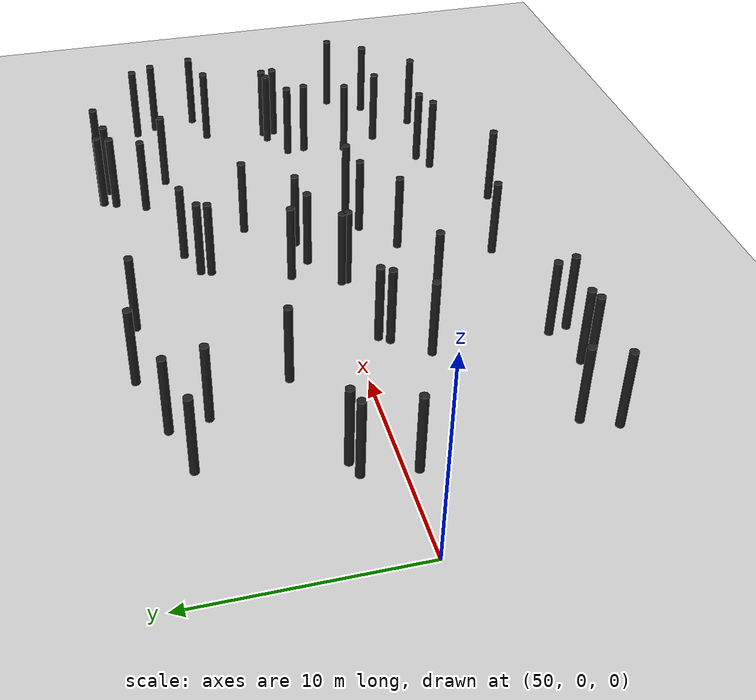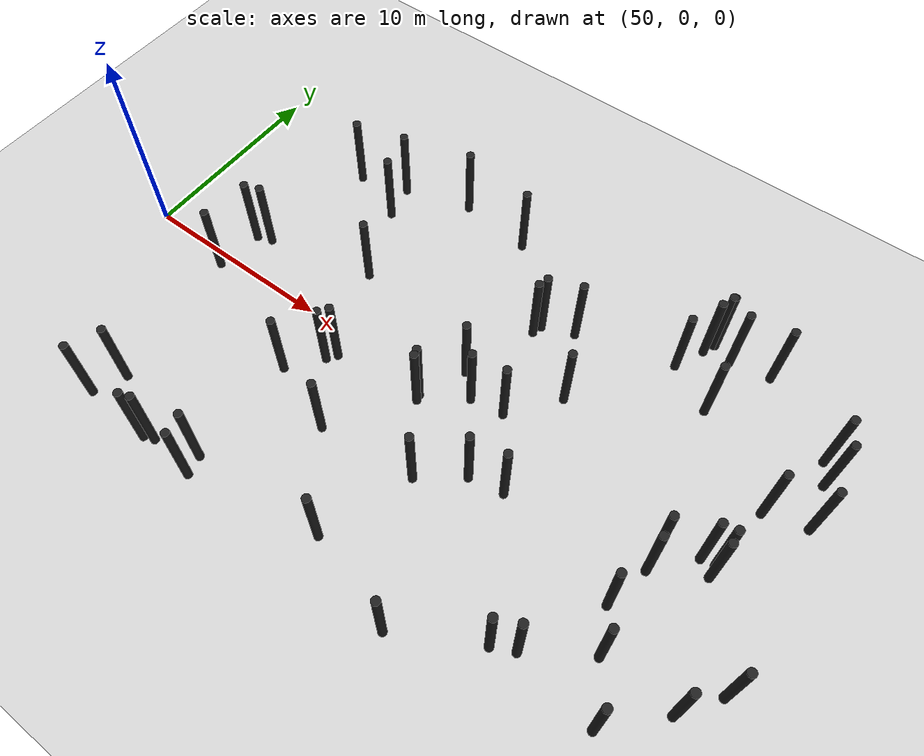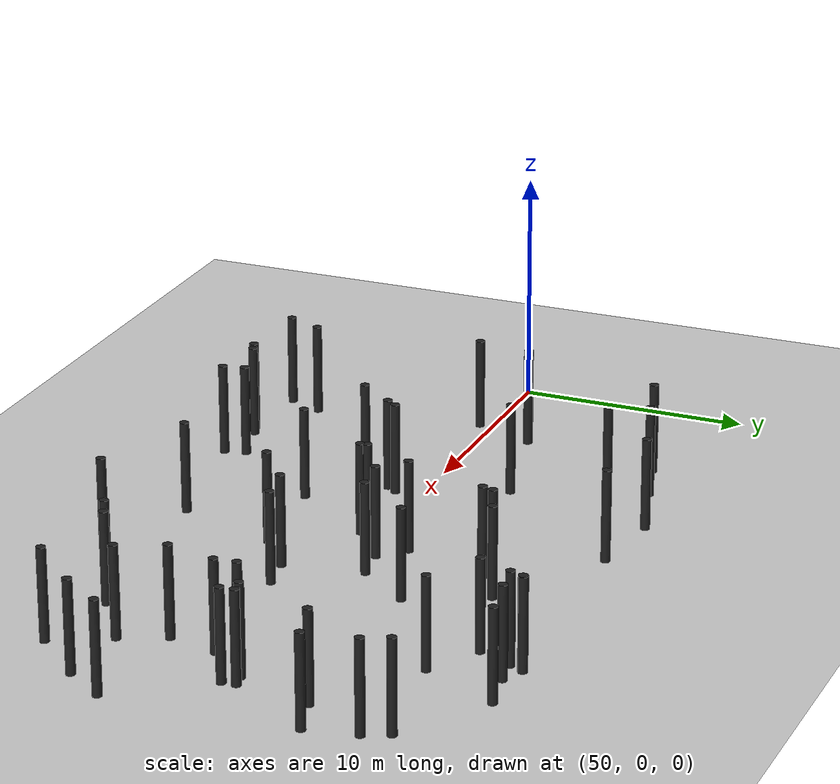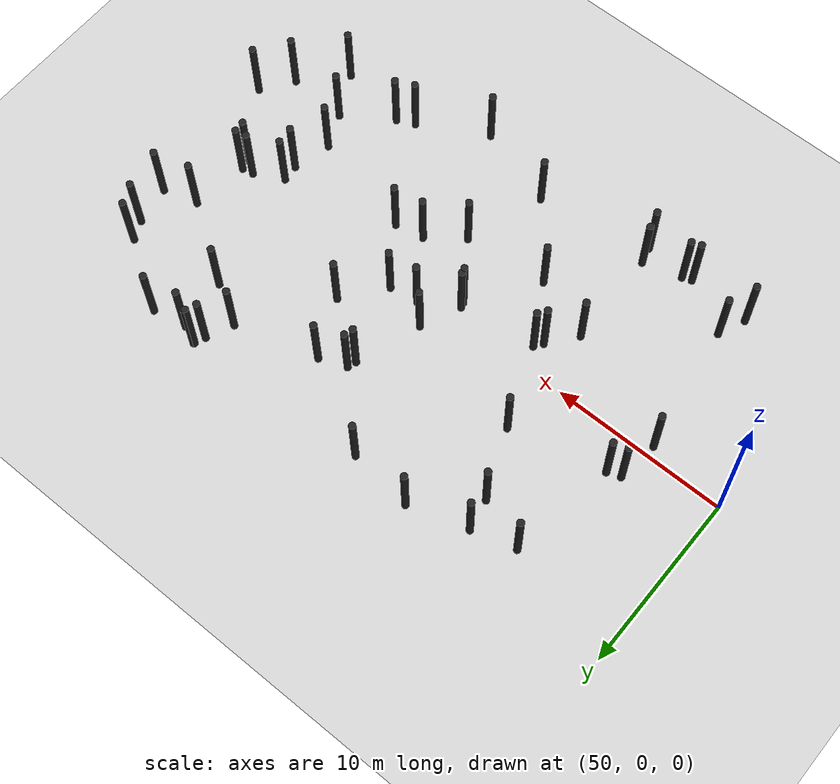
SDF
<sdf version="1.5">
 <world name="default">
  <model name="ground_plane">
   <static>1</static>
   <link name="link">
    <collision name="collision">
     <geometry><plane><normal>0 0 1</normal><size>200 200</size></plane></geometry>
     <surface><friction><ode><mu>100</mu><mu2>50</mu2></ode></friction></surface>
    </collision>
    <visual name="visual">
     <cast_shadows>0</cast_shadows>
     <geometry><plane><normal>0 0 1</normal><size>200 200</size></plane></geometry>
     <material>
      <script><uri>file://media/materials/scripts/gazebo.material</uri><name>Gazebo/Grey</name></script>
     </material>
    </visual>
   </link>
  </model>
  <model name="forest_2_clone_0">
   <pose>67.0804 -0.817123 0.003652 0 -0 0</pose>
   <static>1</static>
   <link name="cylinder::link">
    <inertial>
     <mass>1</mass>
     <inertia><ixx>0.083</ixx><ixy>0</ixy><ixz>0</ixz><iyy>0.083</iyy><iyz>0</iyz><izz>0.083</izz></inertia>
    </inertial>
    <collision name="collision">
     <geometry><cylinder><radius>0.2</radius><length>4</length></cylinder></geometry>
    </collision>
    <visual name="visual">
     <geometry><cylinder><radius>0.2</radius><length>4</length></cylinder></geometry>
     <material>
      <script><uri>file://media/materials/scripts/gazebo.material</uri><name>Gazebo/Black</name></script>
     </material>
    </visual>
    <pose>0 0 2 0 -0 0</pose>
   </link>
  </model>
  <model name="forest_2_clone_1">
   <pose>83.1907 7.42533 -0.000877 0 -0 0</pose>
   <static>1</static>
   <link name="cylinder::link">
    <inertial>
     <mass>1</mass>
     <inertia><ixx>0.083</ixx><ixy>0</ixy><ixz>0</ixz><iyy>0.083</iyy><iyz>0</iyz><izz>0.083</izz></inertia>
    </inertial>
    <collision name="collision">
     <geometry><cylinder><radius>0.2</radius><length>4</length></cylinder></geometry>
    </collision>
    <visual name="visual">
     <geometry><cylinder><radius>0.2</radius><length>4</length></cylinder></geometry>
     <material>
      <script><uri>file://media/materials/scripts/gazebo.material</uri><name>Gazebo/Black</name></script>
     </material>
    </visual>
    <pose>0 0 2 0 -0 0</pose>
   </link>
  </model>
  <model name="forest_2_clone_3">
   <pose>77.8008 6.53178 0.003085 0 -0 0</pose>
   <static>1</static>
   <link name="cylinder::link">
    <inertial>
     <mass>1</mass>
     <inertia><ixx>0.083</ixx><ixy>0</ixy><ixz>0</ixz><iyy>0.083</iyy><iyz>0</iyz><izz>0.083</izz></inertia>
    </inertial>
    <collision name="collision">
     <geometry><cylinder><radius>0.2</radius><length>4</length></cylinder></geometry>
    </collision>
    <visual name="visual">
     <geometry><cylinder><radius>0.2</radius><length>4</length></cylinder></geometry>
     <material>
      <script><uri>file://media/materials/scripts/gazebo.material</uri><name>Gazebo/Black</name></script>
     </material>
    </visual>
    <pose>0 0 2 0 -0 0</pose>
   </link>
  </model>
  <model name="forest_2_clone_4">
   <pose>55.4991 2.06716 0.003484 0 -0 0</pose>
   <static>1</static>
   <link name="cylinder::link">
    <inertial>
     <mass>1</mass>
     <inertia><ixx>0.083</ixx><ixy>0</ixy><ixz>0</ixz><iyy>0.083</iyy><iyz>0</iyz><izz>0.083</izz></inertia>
    </inertial>
    <collision name="collision">
     <geometry><cylinder><radius>0.2</radius><length>4</length></cylinder></geometry>
    </collision>
    <visual name="visual">
     <geometry><cylinder><radius>0.2</radius><length>4</length></cylinder></geometry>
     <material>
      <script><uri>file://media/materials/scripts/gazebo.material</uri><name>Gazebo/Black</name></script>
     </material>
    </visual>
    <pose>0 0 2 0 -0 0</pose>
   </link>
  </model>
  <model name="forest_2_clone_5">
   <pose>58.8886 8.82287 0.003592 0 -0 0</pose>
   <static>1</static>
   <link name="cylinder::link">
    <inertial>
     <mass>1</mass>
     <inertia><ixx>0.083</ixx><ixy>0</ixy><ixz>0</ixz><iyy>0.083</iyy><iyz>0</iyz><izz>0.083</izz></inertia>
    </inertial>
    <collision name="collision">
     <geometry><cylinder><radius>0.2</radius><length>4</length></cylinder></geometry>
    </collision>
    <visual name="visual">
     <geometry><cylinder><radius>0.2</radius><length>4</length></cylinder></geometry>
     <material>
      <script><uri>file://media/materials/scripts/gazebo.material</uri><name>Gazebo/Black</name></script>
     </material>
    </visual>
    <pose>0 0 2 0 -0 0</pose>
   </link>
  </model>
  <model name="forest_2_clone_7">
   <pose>58.5174 -9.55604 -0.001476 0 -0 0</pose>
   <static>1</static>
   <link name="cylinder::link">
    <inertial>
     <mass>1</mass>
     <inertia><ixx>0.083</ixx><ixy>0</ixy><ixz>0</ixz><iyy>0.083</iyy><iyz>0</iyz><izz>0.083</izz></inertia>
    </inertial>
    <collision name="collision">
     <geometry><cylinder><radius>0.2</radius><length>4</length></cylinder></geometry>
    </collision>
    <visual name="visual">
     <geometry><cylinder><radius>0.2</radius><length>4</length></cylinder></geometry>
     <material>
      <script><uri>file://media/materials/scripts/gazebo.material</uri><name>Gazebo/Black</name></script>
     </material>
    </visual>
    <pose>0 0 2 0 -0 0</pose>
   </link>
  </model>
  <model name="forest_2_clone_8">
   <pose>62.3265 -1.6109 -0.002015 0 -0 0</pose>
   <static>1</static>
   <link name="cylinder::link">
    <inertial>
     <mass>1</mass>
     <inertia><ixx>0.083</ixx><ixy>0</ixy><ixz>0</ixz><iyy>0.083</iyy><iyz>0</iyz><izz>0.083</izz></inertia>
    </inertial>
    <collision name="collision">
     <geometry><cylinder><radius>0.2</radius><length>4</length></cylinder></geometry>
    </collision>
    <visual name="visual">
     <geometry><cylinder><radius>0.2</radius><length>4</length></cylinder></geometry>
     <material>
      <script><uri>file://media/materials/scripts/gazebo.material</uri><name>Gazebo/Black</name></script>
     </material>
    </visual>
    <pose>0 0 2 0 -0 0</pose>
   </link>
  </model>
  <model name="forest_2_clone_10">
   <pose>61.42 -9.67533 0.003151 0 -0 0</pose>
   <static>1</static>
   <link name="cylinder::link">
    <inertial>
     <mass>1</mass>
     <inertia><ixx>0.083</ixx><ixy>0</ixy><ixz>0</ixz><iyy>0.083</iyy><iyz>0</iyz><izz>0.083</izz></inertia>
    </inertial>
    <collision name="collision">
     <geometry><cylinder><radius>0.2</radius><length>4</length></cylinder></geometry>
    </collision>
    <visual name="visual">
     <geometry><cylinder><radius>0.2</radius><length>4</length></cylinder></geometry>
     <material>
      <script><uri>file://media/materials/scripts/gazebo.material</uri><name>Gazebo/Black</name></script>
     </material>
    </visual>
    <pose>0 0 2 0 -0 0</pose>
   </link>
  </model>
  <model name="forest_2_clone_11">
   <pose>72.393 3.22693 0.004106 0 -0 0</pose>
   <static>1</static>
   <link name="cylinder::link">
    <inertial>
     <mass>1</mass>
     <inertia><ixx>0.083</ixx><ixy>0</ixy><ixz>0</ixz><iyy>0.083</iyy><iyz>0</iyz><izz>0.083</izz></inertia>
    </inertial>
    <collision name="collision">
     <geometry><cylinder><radius>0.2</radius><length>4</length></cylinder></geometry>
    </collision>
    <visual name="visual">
     <geometry><cylinder><radius>0.2</radius><length>4</length></cylinder></geometry>
     <material>
      <script><uri>file://media/materials/scripts/gazebo.material</uri><name>Gazebo/Black</name></script>
     </material>
    </visual>
    <pose>0 0 2 0 -0 0</pose>
   </link>
  </model>
  <model name="forest_2_clone_14">
   <pose>67.9801 1.70469 0.00058 0 -0 0</pose>
   <static>1</static>
   <link name="cylinder::link">
    <inertial>
     <mass>1</mass>
     <inertia><ixx>0.083</ixx><ixy>0</ixy><ixz>0</ixz><iyy>0.083</iyy><iyz>0</iyz><izz>0.083</izz></inertia>
    </inertial>
    <collision name="collision">
     <geometry><cylinder><radius>0.2</radius><length>4</length></cylinder></geometry>
    </collision>
    <visual name="visual">
     <geometry><cylinder><radius>0.2</radius><length>4</length></cylinder></geometry>
     <material>
      <script><uri>file://media/materials/scripts/gazebo.material</uri><name>Gazebo/Black</name></script>
     </material>
    </visual>
    <pose>0 0 2 0 -0 0</pose>
   </link>
  </model>
  <model name="forest_2_clone_15">
   <pose>56.4421 8.12682 -0.001879 0 -0 0</pose>
   <static>1</static>
   <link name="cylinder::link">
    <inertial>
     <mass>1</mass>
     <inertia><ixx>0.083</ixx><ixy>0</ixy><ixz>0</ixz><iyy>0.083</iyy><iyz>0</iyz><izz>0.083</izz></inertia>
    </inertial>
    <collision name="collision">
     <geometry><cylinder><radius>0.2</radius><length>4</length></cylinder></geometry>
    </collision>
    <visual name="visual">
     <geometry><cylinder><radius>0.2</radius><length>4</length></cylinder></geometry>
     <material>
      <script><uri>file://media/materials/scripts/gazebo.material</uri><name>Gazebo/Black</name></script>
     </material>
    </visual>
    <pose>0 0 2 0 -0 0</pose>
   </link>
  </model>
  <model name="forest_2_clone_16">
   <pose>65.8478 9.39716 -0.002234 0 -0 0</pose>
   <static>1</static>
   <link name="cylinder::link">
    <inertial>
     <mass>1</mass>
     <inertia><ixx>0.083</ixx><ixy>0</ixy><ixz>0</ixz><iyy>0.083</iyy><iyz>0</iyz><izz>0.083</izz></inertia>
    </inertial>
    <collision name="collision">
     <geometry><cylinder><radius>0.2</radius><length>4</length></cylinder></geometry>
    </collision>
    <visual name="visual">
     <geometry><cylinder><radius>0.2</radius><length>4</length></cylinder></geometry>
     <material>
      <script><uri>file://media/materials/scripts/gazebo.material</uri><name>Gazebo/Black</name></script>
     </material>
    </visual>
    <pose>0 0 2 0 -0 0</pose>
   </link>
  </model>
  <model name="forest_2_clone_18">
   <pose>71.2232 -2.49388 0.000532 0 -0 0</pose>
   <static>1</static>
   <link name="cylinder::link">
    <inertial>
     <mass>1</mass>
     <inertia><ixx>0.083</ixx><ixy>0</ixy><ixz>0</ixz><iyy>0.083</iyy><iyz>0</iyz><izz>0.083</izz></inertia>
    </inertial>
    <collision name="collision">
     <geometry><cylinder><radius>0.2</radius><length>4</length></cylinder></geometry>
    </collision>
    <visual name="visual">
     <geometry><cylinder><radius>0.2</radius><length>4</length></cylinder></geometry>
     <material>
      <script><uri>file://media/materials/scripts/gazebo.material</uri><name>Gazebo/Black</name></script>
     </material>
    </visual>
    <pose>0 0 2 0 -0 0</pose>
   </link>
  </model>
  <model name="forest_2_clone_19">
   <pose>69.0136 0.686151 0.004085 0 -0 0</pose>
   <static>1</static>
   <link name="cylinder::link">
    <inertial>
     <mass>1</mass>
     <inertia><ixx>0.083</ixx><ixy>0</ixy><ixz>0</ixz><iyy>0.083</iyy><iyz>0</iyz><izz>0.083</izz></inertia>
    </inertial>
    <collision name="collision">
     <geometry><cylinder><radius>0.2</radius><length>4</length></cylinder></geometry>
    </collision>
    <visual name="visual">
     <geometry><cylinder><radius>0.2</radius><length>4</length></cylinder></geometry>
     <material>
      <script><uri>file://media/materials/scripts/gazebo.material</uri><name>Gazebo/Black</name></script>
     </material>
    </visual>
    <pose>0 0 2 0 -0 0</pose>
   </link>
  </model>
  <model name="forest_2_clone_21">
   <pose>78.9597 -3.64649 -0.001864 0 -0 0</pose>
   <static>1</static>
   <link name="cylinder::link">
    <inertial>
     <mass>1</mass>
     <inertia><ixx>0.083</ixx><ixy>0</ixy><ixz>0</ixz><iyy>0.083</iyy><iyz>0</iyz><izz>0.083</izz></inertia>
    </inertial>
    <collision name="collision">
     <geometry><cylinder><radius>0.2</radius><length>4</length></cylinder></geometry>
    </collision>
    <visual name="visual">
     <geometry><cylinder><radius>0.2</radius><length>4</length></cylinder></geometry>
     <material>
      <script><uri>file://media/materials/scripts/gazebo.material</uri><name>Gazebo/Black</name></script>
     </material>
    </visual>
    <pose>0 0 2 0 -0 0</pose>
   </link>
  </model>
  <model name="forest_2_clone_22">
   <pose>76.4591 9.90846 0.003955 0 -0 0</pose>
   <static>1</static>
   <link name="cylinder::link">
    <inertial>
     <mass>1</mass>
     <inertia><ixx>0.083</ixx><ixy>0</ixy><ixz>0</ixz><iyy>0.083</iyy><iyz>0</iyz><izz>0.083</izz></inertia>
    </inertial>
    <collision name="collision">
     <geometry><cylinder><radius>0.2</radius><length>4</length></cylinder></geometry>
    </collision>
    <visual name="visual">
     <geometry><cylinder><radius>0.2</radius><length>4</length></cylinder></geometry>
     <material>
      <script><uri>file://media/materials/scripts/gazebo.material</uri><name>Gazebo/Black</name></script>
     </material>
    </visual>
    <pose>0 0 2 0 -0 0</pose>
   </link>
  </model>
  <model name="forest_2_clone_23">
   <pose>81.6883 -0.176019 0.002253 0 -0 0</pose>
   <static>1</static>
   <link name="cylinder::link">
    <inertial>
     <mass>1</mass>
     <inertia><ixx>0.083</ixx><ixy>0</ixy><ixz>0</ixz><iyy>0.083</iyy><iyz>0</iyz><izz>0.083</izz></inertia>
    </inertial>
    <collision name="collision">
     <geometry><cylinder><radius>0.2</radius><length>4</length></cylinder></geometry>
    </collision>
    <visual name="visual">
     <geometry><cylinder><radius>0.2</radius><length>4</length></cylinder></geometry>
     <material>
      <script><uri>file://media/materials/scripts/gazebo.material</uri><name>Gazebo/Black</name></script>
     </material>
    </visual>
    <pose>0 0 2 0 -0 0</pose>
   </link>
  </model>
  <model name="forest_2_clone_24">
   <pose>79.7942 -5.55656 0.003118 0 -0 0</pose>
   <static>1</static>
   <link name="cylinder::link">
    <inertial>
     <mass>1</mass>
     <inertia><ixx>0.083</ixx><ixy>0</ixy><ixz>0</ixz><iyy>0.083</iyy><iyz>0</iyz><izz>0.083</izz></inertia>
    </inertial>
    <collision name="collision">
     <geometry><cylinder><radius>0.2</radius><length>4</length></cylinder></geometry>
    </collision>
    <visual name="visual">
     <geometry><cylinder><radius>0.2</radius><length>4</length></cylinder></geometry>
     <material>
      <script><uri>file://media/materials/scripts/gazebo.material</uri><name>Gazebo/Black</name></script>
     </material>
    </visual>
    <pose>0 0 2 0 -0 0</pose>
   </link>
  </model>
  <model name="forest_2_clone_25">
   <pose>79.3924 -0.536858 -0.004988 0 -0 0</pose>
   <static>1</static>
   <link name="cylinder::link">
    <inertial>
     <mass>1</mass>
     <inertia><ixx>0.083</ixx><ixy>0</ixy><ixz>0</ixz><iyy>0.083</iyy><iyz>0</iyz><izz>0.083</izz></inertia>
    </inertial>
    <collision name="collision">
     <geometry><cylinder><radius>0.2</radius><length>4</length></cylinder></geometry>
    </collision>
    <visual name="visual">
     <geometry><cylinder><radius>0.2</radius><length>4</length></cylinder></geometry>
     <material>
      <script><uri>file://media/materials/scripts/gazebo.material</uri><name>Gazebo/Black</name></script>
     </material>
    </visual>
    <pose>0 0 2 0 -0 0</pose>
   </link>
  </model>
  <model name="forest_2_clone_27">
   <pose>62.2148 9.81551 -0.002685 0 -0 0</pose>
   <static>1</static>
   <link name="cylinder::link">
    <inertial>
     <mass>1</mass>
     <inertia><ixx>0.083</ixx><ixy>0</ixy><ixz>0</ixz><iyy>0.083</iyy><iyz>0</iyz><izz>0.083</izz></inertia>
    </inertial>
    <collision name="collision">
     <geometry><cylinder><radius>0.2</radius><length>4</length></cylinder></geometry>
    </collision>
    <visual name="visual">
     <geometry><cylinder><radius>0.2</radius><length>4</length></cylinder></geometry>
     <material>
      <script><uri>file://media/materials/scripts/gazebo.material</uri><name>Gazebo/Black</name></script>
     </material>
    </visual>
    <pose>0 0 2 0 -0 0</pose>
   </link>
  </model>
  <model name="forest_2_clone_29">
   <pose>72.8788 -2.19601 -0.003758 0 -0 0</pose>
   <static>1</static>
   <link name="cylinder::link">
    <inertial>
     <mass>1</mass>
     <inertia><ixx>0.083</ixx><ixy>0</ixy><ixz>0</ixz><iyy>0.083</iyy><iyz>0</iyz><izz>0.083</izz></inertia>
    </inertial>
    <collision name="collision">
     <geometry><cylinder><radius>0.2</radius><length>4</length></cylinder></geometry>
    </collision>
    <visual name="visual">
     <geometry><cylinder><radius>0.2</radius><length>4</length></cylinder></geometry>
     <material>
      <script><uri>file://media/materials/scripts/gazebo.material</uri><name>Gazebo/Black</name></script>
     </material>
    </visual>
    <pose>0 0 2 0 -0 0</pose>
   </link>
  </model>
  <model name="forest_2_clone_30">
   <pose>84.4082 -3.9908 0.002614 0 -0 0</pose>
   <static>1</static>
   <link name="cylinder::link">
    <inertial>
     <mass>1</mass>
     <inertia><ixx>0.083</ixx><ixy>0</ixy><ixz>0</ixz><iyy>0.083</iyy><iyz>0</iyz><izz>0.083</izz></inertia>
    </inertial>
    <collision name="collision">
     <geometry><cylinder><radius>0.2</radius><length>4</length></cylinder></geometry>
    </collision>
    <visual name="visual">
     <geometry><cylinder><radius>0.2</radius><length>4</length></cylinder></geometry>
     <material>
      <script><uri>file://media/materials/scripts/gazebo.material</uri><name>Gazebo/Black</name></script>
     </material>
    </visual>
    <pose>0 0 2 0 -0 0</pose>
   </link>
  </model>
  <model name="forest_2_clone_32">
   <pose>69.2285 5.39884 -0.004603 0 -0 0</pose>
   <static>1</static>
   <link name="cylinder::link">
    <inertial>
     <mass>1</mass>
     <inertia><ixx>0.083</ixx><ixy>0</ixy><ixz>0</ixz><iyy>0.083</iyy><iyz>0</iyz><izz>0.083</izz></inertia>
    </inertial>
    <collision name="collision">
     <geometry><cylinder><radius>0.2</radius><length>4</length></cylinder></geometry>
    </collision>
    <visual name="visual">
     <geometry><cylinder><radius>0.2</radius><length>4</length></cylinder></geometry>
     <material>
      <script><uri>file://media/materials/scripts/gazebo.material</uri><name>Gazebo/Black</name></script>
     </material>
    </visual>
    <pose>0 0 2 0 -0 0</pose>
   </link>
  </model>
  <model name="forest_2_clone_33">
   <pose>77.1329 -7.33391 0.004396 0 -0 0</pose>
   <static>1</static>
   <link name="cylinder::link">
    <inertial>
     <mass>1</mass>
     <inertia><ixx>0.083</ixx><ixy>0</ixy><ixz>0</ixz><iyy>0.083</iyy><iyz>0</iyz><izz>0.083</izz></inertia>
    </inertial>
    <collision name="collision">
     <geometry><cylinder><radius>0.2</radius><length>4</length></cylinder></geometry>
    </collision>
    <visual name="visual">
     <geometry><cylinder><radius>0.2</radius><length>4</length></cylinder></geometry>
     <material>
      <script><uri>file://media/materials/scripts/gazebo.material</uri><name>Gazebo/Black</name></script>
     </material>
    </visual>
    <pose>0 0 2 0 -0 0</pose>
   </link>
  </model>
  <model name="forest_2_clone_34">
   <pose>59.0313 -9.36889 1e-05 0 -0 0</pose>
   <static>1</static>
   <link name="cylinder::link">
    <inertial>
     <mass>1</mass>
     <inertia><ixx>0.083</ixx><ixy>0</ixy><ixz>0</ixz><iyy>0.083</iyy><iyz>0</iyz><izz>0.083</izz></inertia>
    </inertial>
    <collision name="collision">
     <geometry><cylinder><radius>0.2</radius><length>4</length></cylinder></geometry>
    </collision>
    <visual name="visual">
     <geometry><cylinder><radius>0.2</radius><length>4</length></cylinder></geometry>
     <material>
      <script><uri>file://media/materials/scripts/gazebo.material</uri><name>Gazebo/Black</name></script>
     </material>
    </visual>
    <pose>0 0 2 0 -0 0</pose>
   </link>
  </model>
  <model name="forest_2_clone_35">
   <pose>69.3731 5.892 -0.003671 0 -0 0</pose>
   <static>1</static>
   <link name="cylinder::link">
    <inertial>
     <mass>1</mass>
     <inertia><ixx>0.083</ixx><ixy>0</ixy><ixz>0</ixz><iyy>0.083</iyy><iyz>0</iyz><izz>0.083</izz></inertia>
    </inertial>
    <collision name="collision">
     <geometry><cylinder><radius>0.2</radius><length>4</length></cylinder></geometry>
    </collision>
    <visual name="visual">
     <geometry><cylinder><radius>0.2</radius><length>4</length></cylinder></geometry>
     <material>
      <script><uri>file://media/materials/scripts/gazebo.material</uri><name>Gazebo/Black</name></script>
     </material>
    </visual>
    <pose>0 0 2 0 -0 0</pose>
   </link>
  </model>
  <model name="forest_2_clone_37">
   <pose>69.3038 -3.96603 0.002179 0 -0 0</pose>
   <static>1</static>
   <link name="cylinder::link">
    <inertial>
     <mass>1</mass>
     <inertia><ixx>0.083</ixx><ixy>0</ixy><ixz>0</ixz><iyy>0.083</iyy><iyz>0</iyz><izz>0.083</izz></inertia>
    </inertial>
    <collision name="collision">
     <geometry><cylinder><radius>0.2</radius><length>4</length></cylinder></geometry>
    </collision>
    <visual name="visual">
     <geometry><cylinder><radius>0.2</radius><length>4</length></cylinder></geometry>
     <material>
      <script><uri>file://media/materials/scripts/gazebo.material</uri><name>Gazebo/Black</name></script>
     </material>
    </visual>
    <pose>0 0 2 0 -0 0</pose>
   </link>
  </model>
  <model name="forest_2_clone_38">
   <pose>72.4303 -9.85886 -0.004525 0 -0 0</pose>
   <static>1</static>
   <link name="cylinder::link">
    <inertial>
     <mass>1</mass>
     <inertia><ixx>0.083</ixx><ixy>0</ixy><ixz>0</ixz><iyy>0.083</iyy><iyz>0</iyz><izz>0.083</izz></inertia>
    </inertial>
    <collision name="collision">
     <geometry><cylinder><radius>0.2</radius><length>4</length></cylinder></geometry>
    </collision>
    <visual name="visual">
     <geometry><cylinder><radius>0.2</radius><length>4</length></cylinder></geometry>
     <material>
      <script><uri>file://media/materials/scripts/gazebo.material</uri><name>Gazebo/Black</name></script>
     </material>
    </visual>
    <pose>0 0 2 0 -0 0</pose>
   </link>
  </model>
  <model name="forest_2_clone_39">
   <pose>81.6455 0.43053 -0.002622 0 -0 0</pose>
   <static>1</static>
   <link name="cylinder::link">
    <inertial>
     <mass>1</mass>
     <inertia><ixx>0.083</ixx><ixy>0</ixy><ixz>0</ixz><iyy>0.083</iyy><iyz>0</iyz><izz>0.083</izz></inertia>
    </inertial>
    <collision name="collision">
     <geometry><cylinder><radius>0.2</radius><length>4</length></cylinder></geometry>
    </collision>
    <visual name="visual">
     <geometry><cylinder><radius>0.2</radius><length>4</length></cylinder></geometry>
     <material>
      <script><uri>file://media/materials/scripts/gazebo.material</uri><name>Gazebo/Black</name></script>
     </material>
    </visual>
    <pose>0 0 2 0 -0 0</pose>
   </link>
  </model>
  <model name="forest_2_clone_40">
   <pose>61.1987 -8.75206 -0.00108 0 -0 0</pose>
   <static>1</static>
   <link name="cylinder::link">
    <inertial>
     <mass>1</mass>
     <inertia><ixx>0.083</ixx><ixy>0</ixy><ixz>0</ixz><iyy>0.083</iyy><iyz>0</iyz><izz>0.083</izz></inertia>
    </inertial>
    <collision name="collision">
     <geometry><cylinder><radius>0.2</radius><length>4</length></cylinder></geometry>
    </collision>
    <visual name="visual">
     <geometry><cylinder><radius>0.2</radius><length>4</length></cylinder></geometry>
     <material>
      <script><uri>file://media/materials/scripts/gazebo.material</uri><name>Gazebo/Black</name></script>
     </material>
    </visual>
    <pose>0 0 2 0 -0 0</pose>
   </link>
  </model>
  <model name="forest_2_clone_41">
   <pose>81.0313 -7.99216 0.002216 0 -0 0</pose>
   <static>1</static>
   <link name="cylinder::link">
    <inertial>
     <mass>1</mass>
     <inertia><ixx>0.083</ixx><ixy>0</ixy><ixz>0</ixz><iyy>0.083</iyy><iyz>0</iyz><izz>0.083</izz></inertia>
    </inertial>
    <collision name="collision">
     <geometry><cylinder><radius>0.2</radius><length>4</length></cylinder></geometry>
    </collision>
    <visual name="visual">
     <geometry><cylinder><radius>0.2</radius><length>4</length></cylinder></geometry>
     <material>
      <script><uri>file://media/materials/scripts/gazebo.material</uri><name>Gazebo/Black</name></script>
     </material>
    </visual>
    <pose>0 0 2 0 -0 0</pose>
   </link>
  </model>
  <model name="forest_2_clone_42">
   <pose>76.1406 -7.8105 -0.003984 0 -0 0</pose>
   <static>1</static>
   <link name="cylinder::link">
    <inertial>
     <mass>1</mass>
     <inertia><ixx>0.083</ixx><ixy>0</ixy><ixz>0</ixz><iyy>0.083</iyy><iyz>0</iyz><izz>0.083</izz></inertia>
    </inertial>
    <collision name="collision">
     <geometry><cylinder><radius>0.2</radius><length>4</length></cylinder></geometry>
    </collision>
    <visual name="visual">
     <geometry><cylinder><radius>0.2</radius><length>4</length></cylinder></geometry>
     <material>
      <script><uri>file://media/materials/scripts/gazebo.material</uri><name>Gazebo/Black</name></script>
     </material>
    </visual>
    <pose>0 0 2 0 -0 0</pose>
   </link>
  </model>
  <model name="forest_2_clone_46">
   <pose>61.0952 -3.1824 0.00048 0 -0 0</pose>
   <static>1</static>
   <link name="cylinder::link">
    <inertial>
     <mass>1</mass>
     <inertia><ixx>0.083</ixx><ixy>0</ixy><ixz>0</ixz><iyy>0.083</iyy><iyz>0</iyz><izz>0.083</izz></inertia>
    </inertial>
    <collision name="collision">
     <geometry><cylinder><radius>0.2</radius><length>4</length></cylinder></geometry>
    </collision>
    <visual name="visual">
     <geometry><cylinder><radius>0.2</radius><length>4</length></cylinder></geometry>
     <material>
      <script><uri>file://media/materials/scripts/gazebo.material</uri><name>Gazebo/Black</name></script>
     </material>
    </visual>
    <pose>0 0 2 0 -0 0</pose>
   </link>
  </model>
  <model name="forest_2_clone_48">
   <pose>54.9641 -9.36398 -0.000913 0 -0 0</pose>
   <static>1</static>
   <link name="cylinder::link">
    <inertial>
     <mass>1</mass>
     <inertia><ixx>0.083</ixx><ixy>0</ixy><ixz>0</ixz><iyy>0.083</iyy><iyz>0</iyz><izz>0.083</izz></inertia>
    </inertial>
    <collision name="collision">
     <geometry><cylinder><radius>0.2</radius><length>4</length></cylinder></geometry>
    </collision>
    <visual name="visual">
     <geometry><cylinder><radius>0.2</radius><length>4</length></cylinder></geometry>
     <material>
      <script><uri>file://media/materials/scripts/gazebo.material</uri><name>Gazebo/Black</name></script>
     </material>
    </visual>
    <pose>0 0 2 0 -0 0</pose>
   </link>
  </model>
  <model name="forest_2_clone_49">
   <pose>81.0089 0.3101 -0.000781 0 -0 0</pose>
   <static>1</static>
   <link name="cylinder::link">
    <inertial>
     <mass>1</mass>
     <inertia><ixx>0.083</ixx><ixy>0</ixy><ixz>0</ixz><iyy>0.083</iyy><iyz>0</iyz><izz>0.083</izz></inertia>
    </inertial>
    <collision name="collision">
     <geometry><cylinder><radius>0.2</radius><length>4</length></cylinder></geometry>
    </collision>
    <visual name="visual">
     <geometry><cylinder><radius>0.2</radius><length>4</length></cylinder></geometry>
     <material>
      <script><uri>file://media/materials/scripts/gazebo.material</uri><name>Gazebo/Black</name></script>
     </material>
    </visual>
    <pose>0 0 2 0 -0 0</pose>
   </link>
  </model>
  <model name="forest_2_clone_50">
   <pose>75.5581 7.83002 -0.001145 0 -0 0</pose>
   <static>1</static>
   <link name="cylinder::link">
    <inertial>
     <mass>1</mass>
     <inertia><ixx>0.083</ixx><ixy>0</ixy><ixz>0</ixz><iyy>0.083</iyy><iyz>0</iyz><izz>0.083</izz></inertia>
    </inertial>
    <collision name="collision">
     <geometry><cylinder><radius>0.2</radius><length>4</length></cylinder></geometry>
    </collision>
    <visual name="visual">
     <geometry><cylinder><radius>0.2</radius><length>4</length></cylinder></geometry>
     <material>
      <script><uri>file://media/materials/scripts/gazebo.material</uri><name>Gazebo/Black</name></script>
     </material>
    </visual>
    <pose>0 0 2 0 -0 0</pose>
   </link>
  </model>
  <model name="forest_2_clone_51">
   <pose>82.106 3.61796 -0.00357 0 -0 0</pose>
   <static>1</static>
   <link name="cylinder::link">
    <inertial>
     <mass>1</mass>
     <inertia><ixx>0.083</ixx><ixy>0</ixy><ixz>0</ixz><iyy>0.083</iyy><iyz>0</iyz><izz>0.083</izz></inertia>
    </inertial>
    <collision name="collision">
     <geometry><cylinder><radius>0.2</radius><length>4</length></cylinder></geometry>
    </collision>
    <visual name="visual">
     <geometry><cylinder><radius>0.2</radius><length>4</length></cylinder></geometry>
     <material>
      <script><uri>file://media/materials/scripts/gazebo.material</uri><name>Gazebo/Black</name></script>
     </material>
    </visual>
    <pose>0 0 2 0 -0 0</pose>
   </link>
  </model>
  <model name="forest_2_clone_52">
   <pose>76.2284 9.30981 -0.003766 0 -0 0</pose>
   <static>1</static>
   <link name="cylinder::link">
    <inertial>
     <mass>1</mass>
     <inertia><ixx>0.083</ixx><ixy>0</ixy><ixz>0</ixz><iyy>0.083</iyy><iyz>0</iyz><izz>0.083</izz></inertia>
    </inertial>
    <collision name="collision">
     <geometry><cylinder><radius>0.2</radius><length>4</length></cylinder></geometry>
    </collision>
    <visual name="visual">
     <geometry><cylinder><radius>0.2</radius><length>4</length></cylinder></geometry>
     <material>
      <script><uri>file://media/materials/scripts/gazebo.material</uri><name>Gazebo/Black</name></script>
     </material>
    </visual>
    <pose>0 0 2 0 -0 0</pose>
   </link>
  </model>
  <model name="forest_2_clone_53">
   <pose>79.4817 -1.47613 0.004096 0 -0 0</pose>
   <static>1</static>
   <link name="cylinder::link">
    <inertial>
     <mass>1</mass>
     <inertia><ixx>0.083</ixx><ixy>0</ixy><ixz>0</ixz><iyy>0.083</iyy><iyz>0</iyz><izz>0.083</izz></inertia>
    </inertial>
    <collision name="collision">
     <geometry><cylinder><radius>0.2</radius><length>4</length></cylinder></geometry>
    </collision>
    <visual name="visual">
     <geometry><cylinder><radius>0.2</radius><length>4</length></cylinder></geometry>
     <material>
      <script><uri>file://media/materials/scripts/gazebo.material</uri><name>Gazebo/Black</name></script>
     </material>
    </visual>
    <pose>0 0 2 0 -0 0</pose>
   </link>
  </model>
  <model name="forest_2_clone_54">
   <pose>64.5497 -4.46072 -0.002825 0 -0 0</pose>
   <static>1</static>
   <link name="cylinder::link">
    <inertial>
     <mass>1</mass>
     <inertia><ixx>0.083</ixx><ixy>0</ixy><ixz>0</ixz><iyy>0.083</iyy><iyz>0</iyz><izz>0.083</izz></inertia>
    </inertial>
    <collision name="collision">
     <geometry><cylinder><radius>0.2</radius><length>4</length></cylinder></geometry>
    </collision>
    <visual name="visual">
     <geometry><cylinder><radius>0.2</radius><length>4</length></cylinder></geometry>
     <material>
      <script><uri>file://media/materials/scripts/gazebo.material</uri><name>Gazebo/Black</name></script>
     </material>
    </visual>
    <pose>0 0 2 0 -0 0</pose>
   </link>
  </model>
  <model name="forest_2_clone_55">
   <pose>70.8851 6.48675 0.00126 0 -0 0</pose>
   <static>1</static>
   <link name="cylinder::link">
    <inertial>
     <mass>1</mass>
     <inertia><ixx>0.083</ixx><ixy>0</ixy><ixz>0</ixz><iyy>0.083</iyy><iyz>0</iyz><izz>0.083</izz></inertia>
    </inertial>
    <collision name="collision">
     <geometry><cylinder><radius>0.2</radius><length>4</length></cylinder></geometry>
    </collision>
    <visual name="visual">
     <geometry><cylinder><radius>0.2</radius><length>4</length></cylinder></geometry>
     <material>
      <script><uri>file://media/materials/scripts/gazebo.material</uri><name>Gazebo/Black</name></script>
     </material>
    </visual>
    <pose>0 0 2 0 -0 0</pose>
   </link>
  </model>
  <model name="forest_2_clone_56">
   <pose>76.5095 9.9407 -0.003193 0 -0 0</pose>
   <static>1</static>
   <link name="cylinder::link">
    <inertial>
     <mass>1</mass>
     <inertia><ixx>0.083</ixx><ixy>0</ixy><ixz>0</ixz><iyy>0.083</iyy><iyz>0</iyz><izz>0.083</izz></inertia>
    </inertial>
    <collision name="collision">
     <geometry><cylinder><radius>0.2</radius><length>4</length></cylinder></geometry>
    </collision>
    <visual name="visual">
     <geometry><cylinder><radius>0.2</radius><length>4</length></cylinder></geometry>
     <material>
      <script><uri>file://media/materials/scripts/gazebo.material</uri><name>Gazebo/Black</name></script>
     </material>
    </visual>
    <pose>0 0 2 0 -0 0</pose>
   </link>
  </model>
  <model name="forest_2_clone_58">
   <pose>70.6355 0.930533 -0.00026 0 -0 0</pose>
   <static>1</static>
   <link name="cylinder::link">
    <inertial>
     <mass>1</mass>
     <inertia><ixx>0.083</ixx><ixy>0</ixy><ixz>0</ixz><iyy>0.083</iyy><iyz>0</iyz><izz>0.083</izz></inertia>
    </inertial>
    <collision name="collision">
     <geometry><cylinder><radius>0.2</radius><length>4</length></cylinder></geometry>
    </collision>
    <visual name="visual">
     <geometry><cylinder><radius>0.2</radius><length>4</length></cylinder></geometry>
     <material>
      <script><uri>file://media/materials/scripts/gazebo.material</uri><name>Gazebo/Black</name></script>
     </material>
    </visual>
    <pose>0 0 2 0 -0 0</pose>
   </link>
  </model>
  <model name="forest_2_clone_59">
   <pose>84.0551 4.16874 0.001755 0 -0 0</pose>
   <static>1</static>
   <link name="cylinder::link">
    <inertial>
     <mass>1</mass>
     <inertia><ixx>0.083</ixx><ixy>0</ixy><ixz>0</ixz><iyy>0.083</iyy><iyz>0</iyz><izz>0.083</izz></inertia>
    </inertial>
    <collision name="collision">
     <geometry><cylinder><radius>0.2</radius><length>4</length></cylinder></geometry>
    </collision>
    <visual name="visual">
     <geometry><cylinder><radius>0.2</radius><length>4</length></cylinder></geometry>
     <material>
      <script><uri>file://media/materials/scripts/gazebo.material</uri><name>Gazebo/Black</name></script>
     </material>
    </visual>
    <pose>0 0 2 0 -0 0</pose>
   </link>
  </model>
  <model name="forest_2_clone_60">
   <pose>55.6103 -7.84932 0.001168 0 -0 0</pose>
   <static>1</static>
   <link name="cylinder::link">
    <inertial>
     <mass>1</mass>
     <inertia><ixx>0.083</ixx><ixy>0</ixy><ixz>0</ixz><iyy>0.083</iyy><iyz>0</iyz><izz>0.083</izz></inertia>
    </inertial>
    <collision name="collision">
     <geometry><cylinder><radius>0.2</radius><length>4</length></cylinder></geometry>
    </collision>
    <visual name="visual">
     <geometry><cylinder><radius>0.2</radius><length>4</length></cylinder></geometry>
     <material>
      <script><uri>file://media/materials/scripts/gazebo.material</uri><name>Gazebo/Black</name></script>
     </material>
    </visual>
    <pose>0 0 2 0 -0 0</pose>
   </link>
  </model>
  <model name="forest_2_clone_61">
   <pose>54.7528 1.80498 -0.001946 0 -0 0</pose>
   <static>1</static>
   <link name="cylinder::link">
    <inertial>
     <mass>1</mass>
     <inertia><ixx>0.083</ixx><ixy>0</ixy><ixz>0</ixz><iyy>0.083</iyy><iyz>0</iyz><izz>0.083</izz></inertia>
    </inertial>
    <collision name="collision">
     <geometry><cylinder><radius>0.2</radius><length>4</length></cylinder></geometry>
    </collision>
    <visual name="visual">
     <geometry><cylinder><radius>0.2</radius><length>4</length></cylinder></geometry>
     <material>
      <script><uri>file://media/materials/scripts/gazebo.material</uri><name>Gazebo/Black</name></script>
     </material>
    </visual>
    <pose>0 0 2 0 -0 0</pose>
   </link>
  </model>
  <model name="forest_2_clone_62">
   <pose>62.6537 -1.14545 -0.001334 0 -0 0</pose>
   <static>1</static>
   <link name="cylinder::link">
    <inertial>
     <mass>1</mass>
     <inertia><ixx>0.083</ixx><ixy>0</ixy><ixz>0</ixz><iyy>0.083</iyy><iyz>0</iyz><izz>0.083</izz></inertia>
    </inertial>
    <collision name="collision">
     <geometry><cylinder><radius>0.2</radius><length>4</length></cylinder></geometry>
    </collision>
    <visual name="visual">
     <geometry><cylinder><radius>0.2</radius><length>4</length></cylinder></geometry>
     <material>
      <script><uri>file://media/materials/scripts/gazebo.material</uri><name>Gazebo/Black</name></script>
     </material>
    </visual>
    <pose>0 0 2 0 -0 0</pose>
   </link>
  </model>
  <model name="forest_2_clone_63">
   <pose>77.4868 9.49758 0.001641 0 -0 0</pose>
   <static>1</static>
   <link name="cylinder::link">
    <inertial>
     <mass>1</mass>
     <inertia><ixx>0.083</ixx><ixy>0</ixy><ixz>0</ixz><iyy>0.083</iyy><iyz>0</iyz><izz>0.083</izz></inertia>
    </inertial>
    <collision name="collision">
     <geometry><cylinder><radius>0.2</radius><length>4</length></cylinder></geometry>
    </collision>
    <visual name="visual">
     <geometry><cylinder><radius>0.2</radius><length>4</length></cylinder></geometry>
     <material>
      <script><uri>file://media/materials/scripts/gazebo.material</uri><name>Gazebo/Black</name></script>
     </material>
    </visual>
    <pose>0 0 2 0 -0 0</pose>
   </link>
  </model>
  <model name="forest_2_clone_66">
   <pose>54.4788 -0.565407 0.001675 0 -0 0</pose>
   <static>1</static>
   <link name="cylinder::link">
    <inertial>
     <mass>1</mass>
     <inertia><ixx>0.083</ixx><ixy>0</ixy><ixz>0</ixz><iyy>0.083</iyy><iyz>0</iyz><izz>0.083</izz></inertia>
    </inertial>
    <collision name="collision">
     <geometry><cylinder><radius>0.2</radius><length>4</length></cylinder></geometry>
    </collision>
    <visual name="visual">
     <geometry><cylinder><radius>0.2</radius><length>4</length></cylinder></geometry>
     <material>
      <script><uri>file://media/materials/scripts/gazebo.material</uri><name>Gazebo/Black</name></script>
     </material>
    </visual>
    <pose>0 0 2 0 -0 0</pose>
   </link>
  </model>
  <model name="forest_2_clone_67">
   <pose>60.8445 3.34169 0.002191 0 -0 0</pose>
   <static>1</static>
   <link name="cylinder::link">
    <inertial>
     <mass>1</mass>
     <inertia><ixx>0.083</ixx><ixy>0</ixy><ixz>0</ixz><iyy>0.083</iyy><iyz>0</iyz><izz>0.083</izz></inertia>
    </inertial>
    <collision name="collision">
     <geometry><cylinder><radius>0.2</radius><length>4</length></cylinder></geometry>
    </collision>
    <visual name="visual">
     <geometry><cylinder><radius>0.2</radius><length>4</length></cylinder></geometry>
     <material>
      <script><uri>file://media/materials/scripts/gazebo.material</uri><name>Gazebo/Black</name></script>
     </material>
    </visual>
    <pose>0 0 2 0 -0 0</pose>
   </link>
  </model>
  <model name="forest_2_clone_68">
   <pose>83.6729 6.36432 0.00242 0 -0 0</pose>
   <static>1</static>
   <link name="cylinder::link">
    <inertial>
     <mass>1</mass>
     <inertia><ixx>0.083</ixx><ixy>0</ixy><ixz>0</ixz><iyy>0.083</iyy><iyz>0</iyz><izz>0.083</izz></inertia>
    </inertial>
    <collision name="collision">
     <geometry><cylinder><radius>0.2</radius><length>4</length></cylinder></geometry>
    </collision>
    <visual name="visual">
     <geometry><cylinder><radius>0.2</radius><length>4</length></cylinder></geometry>
     <material>
      <script><uri>file://media/materials/scripts/gazebo.material</uri><name>Gazebo/Black</name></script>
     </material>
    </visual>
    <pose>0 0 2 0 -0 0</pose>
   </link>
  </model>
  <model name="forest_2_clone_69">
   <pose>59.2484 7.07821 -0.004353 0 -0 0</pose>
   <static>1</static>
   <link name="cylinder::link">
    <inertial>
     <mass>1</mass>
     <inertia><ixx>0.083</ixx><ixy>0</ixy><ixz>0</ixz><iyy>0.083</iyy><iyz>0</iyz><izz>0.083</izz></inertia>
    </inertial>
    <collision name="collision">
     <geometry><cylinder><radius>0.2</radius><length>4</length></cylinder></geometry>
    </collision>
    <visual name="visual">
     <geometry><cylinder><radius>0.2</radius><length>4</length></cylinder></geometry>
     <material>
      <script><uri>file://media/materials/scripts/gazebo.material</uri><name>Gazebo/Black</name></script>
     </material>
    </visual>
    <pose>0 0 2 0 -0 0</pose>
   </link>
  </model>
  <model name="forest_2_clone_70">
   <pose>67.003 -0.534418 0.001955 0 -0 0</pose>
   <static>1</static>
   <link name="cylinder::link">
    <inertial>
     <mass>1</mass>
     <inertia><ixx>0.083</ixx><ixy>0</ixy><ixz>0</ixz><iyy>0.083</iyy><iyz>0</iyz><izz>0.083</izz></inertia>
    </inertial>
    <collision name="collision">
     <geometry><cylinder><radius>0.2</radius><length>4</length></cylinder></geometry>
    </collision>
    <visual name="visual">
     <geometry><cylinder><radius>0.2</radius><length>4</length></cylinder></geometry>
     <material>
      <script><uri>file://media/materials/scripts/gazebo.material</uri><name>Gazebo/Black</name></script>
     </material>
    </visual>
    <pose>0 0 2 0 -0 0</pose>
   </link>
  </model>
  <model name="forest_2_clone_71">
   <pose>79.4086 9.86363 0.001688 0 -0 0</pose>
   <static>1</static>
   <link name="cylinder::link">
    <inertial>
     <mass>1</mass>
     <inertia><ixx>0.083</ixx><ixy>0</ixy><ixz>0</ixz><iyy>0.083</iyy><iyz>0</iyz><izz>0.083</izz></inertia>
    </inertial>
    <collision name="collision">
     <geometry><cylinder><radius>0.2</radius><length>4</length></cylinder></geometry>
    </collision>
    <visual name="visual">
     <geometry><cylinder><radius>0.2</radius><length>4</length></cylinder></geometry>
     <material>
      <script><uri>file://media/materials/scripts/gazebo.material</uri><name>Gazebo/Black</name></script>
     </material>
    </visual>
    <pose>0 0 2 0 -0 0</pose>
   </link>
  </model>
  <model name="forest_2_clone_73">
   <pose>83.1763 -5.7435 0.004256 0 -0 0</pose>
   <static>1</static>
   <link name="cylinder::link">
    <inertial>
     <mass>1</mass>
     <inertia><ixx>0.083</ixx><ixy>0</ixy><ixz>0</ixz><iyy>0.083</iyy><iyz>0</iyz><izz>0.083</izz></inertia>
    </inertial>
    <collision name="collision">
     <geometry><cylinder><radius>0.2</radius><length>4</length></cylinder></geometry>
    </collision>
    <visual name="visual">
     <geometry><cylinder><radius>0.2</radius><length>4</length></cylinder></geometry>
     <material>
      <script><uri>file://media/materials/scripts/gazebo.material</uri><name>Gazebo/Black</name></script>
     </material>
    </visual>
    <pose>0 0 2 0 -0 0</pose>
   </link>
  </model>
  <model name="forest_2_clone_74">
   <pose>67.788 -8.39479 0.00305 0 -0 0</pose>
   <static>1</static>
   <link name="cylinder::link">
    <inertial>
     <mass>1</mass>
     <inertia><ixx>0.083</ixx><ixy>0</ixy><ixz>0</ixz><iyy>0.083</iyy><iyz>0</iyz><izz>0.083</izz></inertia>
    </inertial>
    <collision name="collision">
     <geometry><cylinder><radius>0.2</radius><length>4</length></cylinder></geometry>
    </collision>
    <visual name="visual">
     <geometry><cylinder><radius>0.2</radius><length>4</length></cylinder></geometry>
     <material>
      <script><uri>file://media/materials/scripts/gazebo.material</uri><name>Gazebo/Black</name></script>
     </material>
    </visual>
    <pose>0 0 2 0 -0 0</pose>
   </link>
  </model>
 </world>
</sdf>
